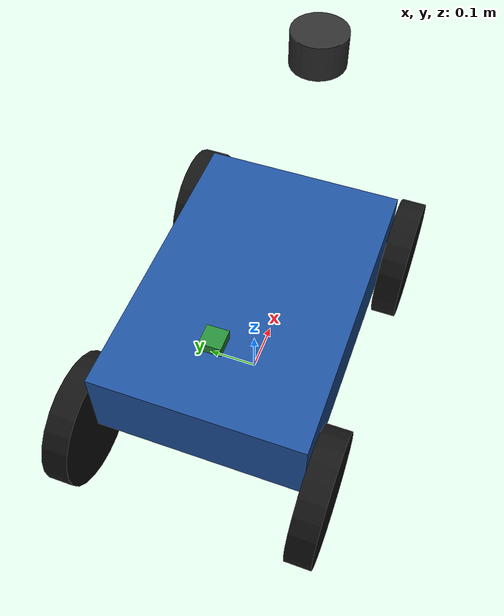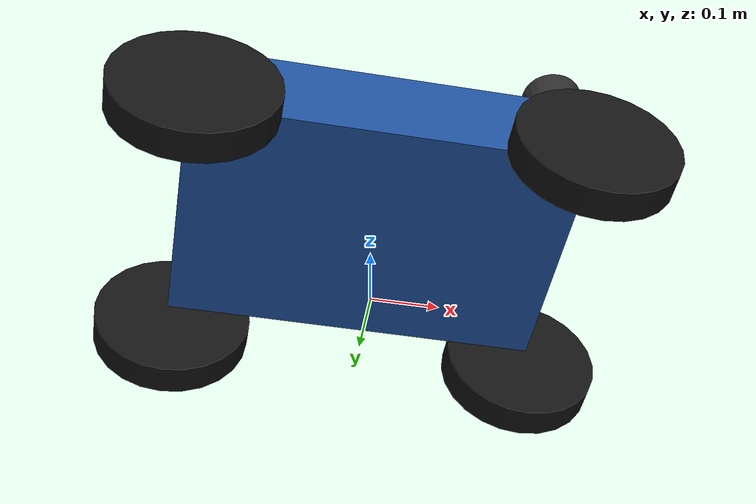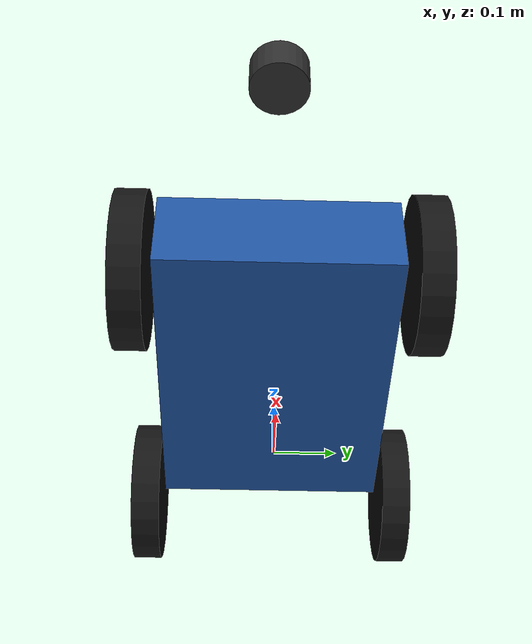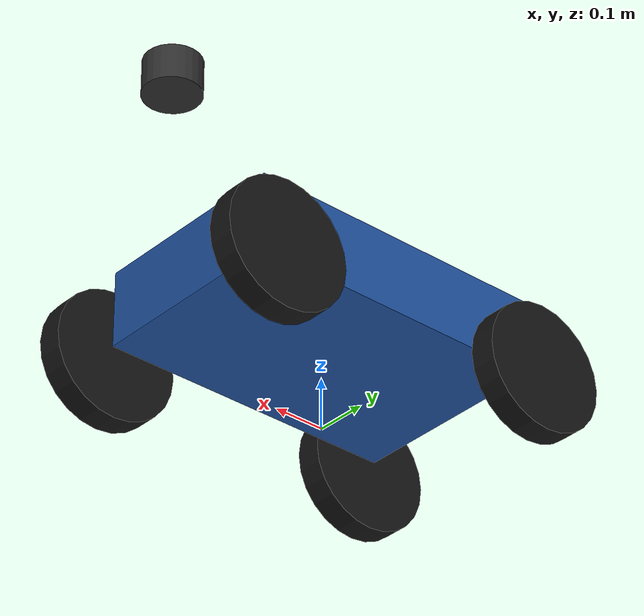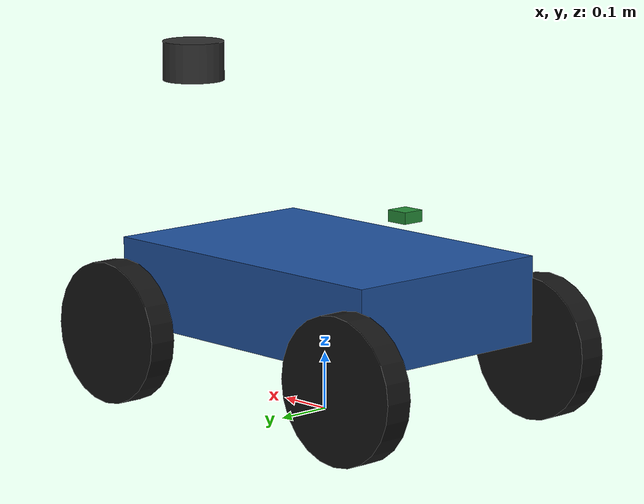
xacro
<?xml version="1.0"?>
<robot name="sim_robot_slam" xmlns:xacro="http://www.ros.org/wiki/xacro"
       xmlns:gz="https://gazebosim.org">
  <!-- Wheel dimensions and sensor origins follow the measured robot geometry.
       The outer shell and masses remain a simplified approximation. -->
  <xacro:property name="wheel_radius" value="0.125"/>
  <xacro:property name="wheel_width" value="0.05"/>
  <xacro:property name="wheelbase" value="0.580"/>
  <xacro:property name="wheel_separation" value="0.454"/>
  <xacro:property name="base_link_height" value="0.2125"/>

  <link name="base_footprint">
    <inertial>
      <mass value="0.01"/>
      <origin xyz="0 0 0"/>
      <inertia ixx="0.0001" ixy="0" ixz="0" iyy="0.0001" iyz="0" izz="0.0001"/>
    </inertial>
  </link>

  <link name="base_link">
    <inertial>
      <mass value="8.0"/>
      <origin xyz="0 0 0"/>
      <inertia ixx="0.121666667" ixy="0" ixz="0" iyy="0.255" iyz="0" izz="0.346666667"/>
    </inertial>
    <visual>
      <geometry>
        <box size="0.60 0.40 0.15"/>
      </geometry>
      <material name="chassis_blue">
        <color rgba="0.12 0.32 0.62 1"/>
      </material>
    </visual>
    <collision>
      <geometry>
        <box size="0.60 0.40 0.15"/>
      </geometry>
    </collision>
  </link>

  <joint name="base_footprint_joint" type="fixed">
    <parent link="base_footprint"/>
    <child link="base_link"/>
    <origin xyz="0 0 ${base_link_height}" rpy="0 0 0"/>
  </joint>

  <link name="front_left_wheel_link">
    <inertial>
      <mass value="0.6"/>
      <origin xyz="0 0 0"/>
      <inertia ixx="0.00246875" ixy="0" ixz="0" iyy="0.0046875" iyz="0" izz="0.00246875"/>
    </inertial>
    <visual>
      <origin xyz="0 0 0" rpy="1.5707963 0 0"/>
      <geometry>
        <cylinder radius="${wheel_radius}" length="${wheel_width}"/>
      </geometry>
      <material name="wheel_black">
        <color rgba="0.08 0.08 0.08 1"/>
      </material>
    </visual>
    <collision>
      <origin xyz="0 0 0" rpy="1.5707963 0 0"/>
      <geometry>
        <cylinder radius="${wheel_radius}" length="${wheel_width}"/>
      </geometry>
    </collision>
  </link>
  <joint name="front_left_wheel_joint" type="continuous">
    <parent link="base_link"/>
    <child link="front_left_wheel_link"/>
    <origin xyz="${wheelbase / 2} ${wheel_separation / 2} ${wheel_radius - base_link_height}" rpy="0 0 0"/>
    <axis xyz="0 1 0"/>
  </joint>
  <gazebo reference="front_left_wheel_link">
    <!-- Keep roller friction in the chassis frame as the wheel spins. -->
    <collision>
      <surface>
        <friction>
          <ode>
            <mu>1.0</mu>
            <mu2>0.0</mu2>
            <fdir1 gz:expressed_in="base_footprint">1 -1 0</fdir1>
          </ode>
        </friction>
      </surface>
    </collision>
  </gazebo>

  <link name="rear_right_wheel_link">
    <inertial>
      <mass value="0.6"/>
      <origin xyz="0 0 0"/>
      <inertia ixx="0.00246875" ixy="0" ixz="0" iyy="0.0046875" iyz="0" izz="0.00246875"/>
    </inertial>
    <visual>
      <origin xyz="0 0 0" rpy="1.5707963 0 0"/>
      <geometry>
        <cylinder radius="${wheel_radius}" length="${wheel_width}"/>
      </geometry>
      <material name="wheel_black">
        <color rgba="0.08 0.08 0.08 1"/>
      </material>
    </visual>
    <collision>
      <origin xyz="0 0 0" rpy="1.5707963 0 0"/>
      <geometry>
        <cylinder radius="${wheel_radius}" length="${wheel_width}"/>
      </geometry>
    </collision>
  </link>
  <joint name="rear_right_wheel_joint" type="continuous">
    <parent link="base_link"/>
    <child link="rear_right_wheel_link"/>
    <origin xyz="${-wheelbase / 2} ${-wheel_separation / 2} ${wheel_radius - base_link_height}" rpy="0 0 0"/>
    <axis xyz="0 1 0"/>
  </joint>
  <gazebo reference="rear_right_wheel_link">
    <collision>
      <surface>
        <friction>
          <ode>
            <mu>1.0</mu>
            <mu2>0.0</mu2>
            <fdir1 gz:expressed_in="base_footprint">1 -1 0</fdir1>
          </ode>
        </friction>
      </surface>
    </collision>
  </gazebo>

  <link name="front_right_wheel_link">
    <inertial>
      <mass value="0.6"/>
      <origin xyz="0 0 0"/>
      <inertia ixx="0.00246875" ixy="0" ixz="0" iyy="0.0046875" iyz="0" izz="0.00246875"/>
    </inertial>
    <visual>
      <origin xyz="0 0 0" rpy="1.5707963 0 0"/>
      <geometry>
        <cylinder radius="${wheel_radius}" length="${wheel_width}"/>
      </geometry>
      <material name="wheel_black">
        <color rgba="0.08 0.08 0.08 1"/>
      </material>
    </visual>
    <collision>
      <origin xyz="0 0 0" rpy="1.5707963 0 0"/>
      <geometry>
        <cylinder radius="${wheel_radius}" length="${wheel_width}"/>
      </geometry>
    </collision>
  </link>
  <joint name="front_right_wheel_joint" type="continuous">
    <parent link="base_link"/>
    <child link="front_right_wheel_link"/>
    <origin xyz="${wheelbase / 2} ${-wheel_separation / 2} ${wheel_radius - base_link_height}" rpy="0 0 0"/>
    <axis xyz="0 1 0"/>
  </joint>
  <gazebo reference="front_right_wheel_link">
    <collision>
      <surface>
        <friction>
          <ode>
            <mu>1.0</mu>
            <mu2>0.0</mu2>
            <fdir1 gz:expressed_in="base_footprint">1 1 0</fdir1>
          </ode>
        </friction>
      </surface>
    </collision>
  </gazebo>

  <link name="rear_left_wheel_link">
    <inertial>
      <mass value="0.6"/>
      <origin xyz="0 0 0"/>
      <inertia ixx="0.00246875" ixy="0" ixz="0" iyy="0.0046875" iyz="0" izz="0.00246875"/>
    </inertial>
    <visual>
      <origin xyz="0 0 0" rpy="1.5707963 0 0"/>
      <geometry>
        <cylinder radius="${wheel_radius}" length="${wheel_width}"/>
      </geometry>
      <material name="wheel_black">
        <color rgba="0.08 0.08 0.08 1"/>
      </material>
    </visual>
    <collision>
      <origin xyz="0 0 0" rpy="1.5707963 0 0"/>
      <geometry>
        <cylinder radius="${wheel_radius}" length="${wheel_width}"/>
      </geometry>
    </collision>
  </link>
  <joint name="rear_left_wheel_joint" type="continuous">
    <parent link="base_link"/>
    <child link="rear_left_wheel_link"/>
    <origin xyz="${-wheelbase / 2} ${wheel_separation / 2} ${wheel_radius - base_link_height}" rpy="0 0 0"/>
    <axis xyz="0 1 0"/>
  </joint>
  <gazebo reference="rear_left_wheel_link">
    <collision>
      <surface>
        <friction>
          <ode>
            <mu>1.0</mu>
            <mu2>0.0</mu2>
            <fdir1 gz:expressed_in="base_footprint">1 1 0</fdir1>
          </ode>
        </friction>
      </surface>
    </collision>
  </gazebo>

  <link name="imu_link">
    <inertial>
      <mass value="0.02"/>
      <origin xyz="0 0 0"/>
      <inertia ixx="0.00001" ixy="0" ixz="0" iyy="0.00001" iyz="0" izz="0.00001"/>
    </inertial>
    <visual>
      <geometry>
        <box size="0.04 0.04 0.02"/>
      </geometry>
      <material name="imu_green">
        <color rgba="0.15 0.55 0.22 1"/>
      </material>
    </visual>
  </link>
  <joint name="imu_joint" type="fixed">
    <parent link="base_link"/>
    <child link="imu_link"/>
    <origin xyz="-0.1955 0 ${0.368 - base_link_height}" rpy="0 0 0"/>
  </joint>

  <link name="lidar_link">
    <inertial>
      <mass value="0.35"/>
      <origin xyz="0 0 0.035"/>
      <inertia ixx="0.0006" ixy="0" ixz="0" iyy="0.0006" iyz="0" izz="0.001"/>
    </inertial>
    <visual>
      <!-- The supplied 0.539 m height is the LiDAR mounting-frame height. -->
      <origin xyz="0 0 0.035"/>
      <geometry>
        <cylinder radius="0.055" length="0.07"/>
      </geometry>
      <material name="lidar_gray">
        <color rgba="0.18 0.18 0.18 1"/>
      </material>
    </visual>
  </link>
  <joint name="lidar_joint" type="fixed">
    <parent link="base_link"/>
    <child link="lidar_link"/>
    <origin xyz="0.343 0 ${0.539 - base_link_height}" rpy="0 0 0"/>
  </joint>

  <gazebo reference="imu_link">
    <sensor name="imu_sensor" type="imu">
      <always_on>true</always_on>
      <update_rate>100</update_rate>
      <topic>/imu/data</topic>
      <imu>
        <angular_velocity>
          <x>
            <noise type="gaussian">
              <mean>0.0</mean>
              <stddev>0.001745329252</stddev>
              <bias_mean>0.0</bias_mean>
              <bias_stddev>0.000174532925</bias_stddev>
              <dynamic_bias_stddev>0.000002</dynamic_bias_stddev>
              <dynamic_bias_correlation_time>3600</dynamic_bias_correlation_time>
            </noise>
          </x>
          <y>
            <noise type="gaussian">
              <mean>0.0</mean>
              <stddev>0.001745329252</stddev>
              <bias_mean>0.0</bias_mean>
              <bias_stddev>0.000174532925</bias_stddev>
              <dynamic_bias_stddev>0.000002</dynamic_bias_stddev>
              <dynamic_bias_correlation_time>3600</dynamic_bias_correlation_time>
            </noise>
          </y>
          <z>
            <noise type="gaussian">
              <mean>0.0</mean>
              <stddev>0.001745329252</stddev>
              <bias_mean>0.0</bias_mean>
              <bias_stddev>0.000174532925</bias_stddev>
              <dynamic_bias_stddev>0.000002</dynamic_bias_stddev>
              <dynamic_bias_correlation_time>3600</dynamic_bias_correlation_time>
            </noise>
          </z>
        </angular_velocity>
        <linear_acceleration>
          <x>
            <noise type="gaussian">
              <mean>0.0</mean>
              <stddev>0.05</stddev>
              <bias_mean>0.0</bias_mean>
              <bias_stddev>0.005</bias_stddev>
              <dynamic_bias_stddev>0.0001</dynamic_bias_stddev>
              <dynamic_bias_correlation_time>3600</dynamic_bias_correlation_time>
            </noise>
          </x>
          <y>
            <noise type="gaussian">
              <mean>0.0</mean>
              <stddev>0.05</stddev>
              <bias_mean>0.0</bias_mean>
              <bias_stddev>0.005</bias_stddev>
              <dynamic_bias_stddev>0.0001</dynamic_bias_stddev>
              <dynamic_bias_correlation_time>3600</dynamic_bias_correlation_time>
            </noise>
          </y>
          <z>
            <noise type="gaussian">
              <mean>0.0</mean>
              <stddev>0.05</stddev>
              <bias_mean>0.0</bias_mean>
              <bias_stddev>0.005</bias_stddev>
              <dynamic_bias_stddev>0.0001</dynamic_bias_stddev>
              <dynamic_bias_correlation_time>3600</dynamic_bias_correlation_time>
            </noise>
          </z>
        </linear_acceleration>
      </imu>
    </sensor>
  </gazebo>

  <gazebo reference="lidar_link">
    <sensor name="lidar_sensor" type="gpu_lidar">
      <pose>0 0 0 0 0 0</pose>
      <topic>/lidar/points</topic>
      <update_rate>10</update_rate>
      <ray>
        <scan>
          <horizontal>
            <samples>1024</samples>
            <resolution>1</resolution>
            <min_angle>-3.14159265</min_angle>
            <max_angle>3.14159265</max_angle>
          </horizontal>
          <vertical>
            <samples>16</samples>
            <resolution>1</resolution>
            <min_angle>-0.261799</min_angle>
            <max_angle>0.261799</max_angle>
          </vertical>
        </scan>
        <range>
          <min>0.2</min>
          <max>60.0</max>
          <resolution>0.01</resolution>
        </range>
      </ray>
      <always_on>true</always_on>
      <visualize>true</visualize>
    </sensor>
  </gazebo>

  <gazebo>
    <plugin filename="gz-sim-mecanum-drive-system"
            name="gz::sim::systems::MecanumDrive">
      <front_left_joint>front_left_wheel_joint</front_left_joint>
      <front_right_joint>front_right_wheel_joint</front_right_joint>
      <back_left_joint>rear_left_wheel_joint</back_left_joint>
      <back_right_joint>rear_right_wheel_joint</back_right_joint>
      <wheelbase>${wheelbase}</wheelbase>
      <wheel_separation>${wheel_separation}</wheel_separation>
      <wheel_radius>${wheel_radius}</wheel_radius>
      <topic>/cmd_vel</topic>
      <odom_topic>/wheel/odometry</odom_topic>
      <tf_topic>/tf</tf_topic>
      <frame_id>odom</frame_id>
      <child_frame_id>base_footprint</child_frame_id>
      <odom_publish_frequency>50</odom_publish_frequency>
    </plugin>
    <plugin filename="gz-sim-joint-state-publisher-system" name="gz::sim::systems::JointStatePublisher">
      <topic>/joint_states</topic>
      <update_rate>50</update_rate>
    </plugin>
  </gazebo>
</robot>
